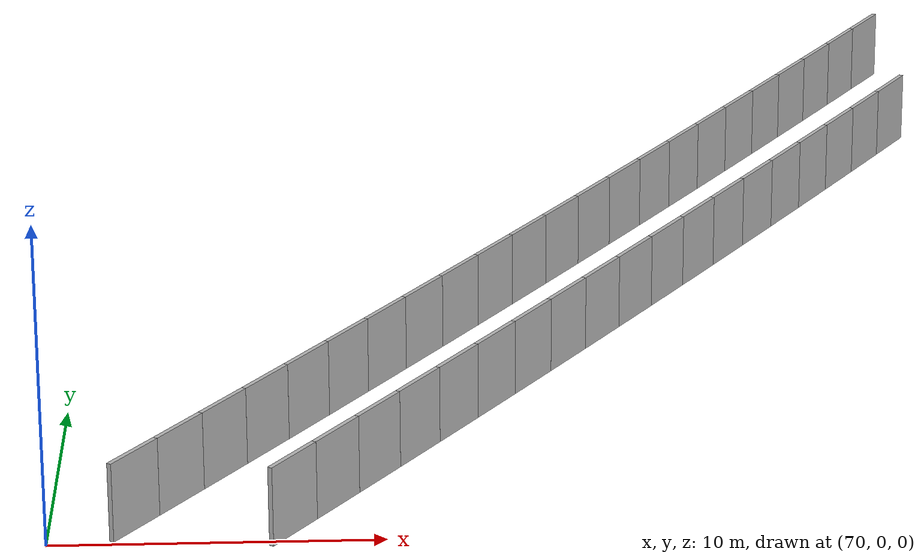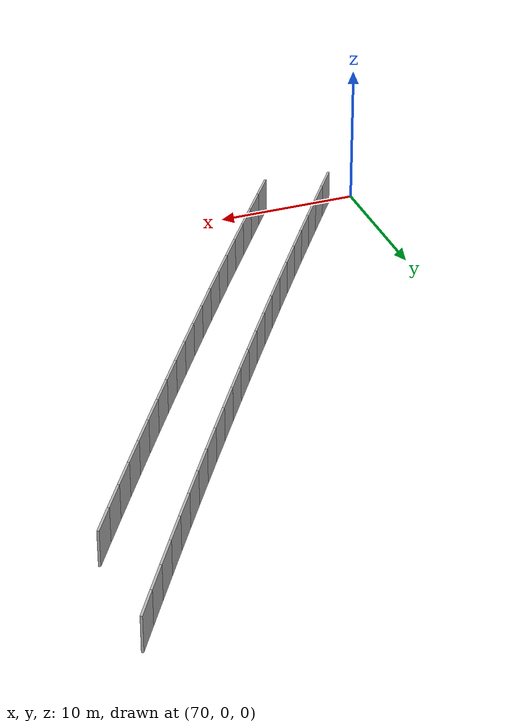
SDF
<?xml version="1.0" ?>
<sdf version="1.6">
  <model name="sps_2107">
    <pose frame="">0 0 0 0 -0 0</pose>
    <static>1</static>
    <self_collide>0</self_collide>
    <allow_auto_disable>0</allow_auto_disable>
    <link name="Wall4335">
      <kinematic>0</kinematic>
      <gravity>1</gravity>
      <self_collide>0</self_collide>
      <collision name="collision">
        <geometry>
          <box>
            <size>2.25463 0.15 2.5</size>
          </box>
        </geometry>
        <pose frame="">0 0 0 0 -0 0</pose>
      </collision>
      <visual name="visual">
        <geometry>
          <box>
            <size>2.25463 0.15 2.5</size>
          </box>
        </geometry>
        <pose frame="">0 0 0 0 -0 0</pose>
        <cast_shadows>1</cast_shadows>
        <transparency>0.0</transparency>
      </visual>
      <pose frame="">77.223 0.656997 1.25 0 -0 0.971576</pose>
    </link>
    <link name="Wall4336">
      <kinematic>0</kinematic>
      <gravity>1</gravity>
      <self_collide>0</self_collide>
      <collision name="collision">
        <geometry>
          <box>
            <size>2.25454 0.15 2.5</size>
          </box>
        </geometry>
        <pose frame="">0 0 0 0 -0 0</pose>
      </collision>
      <visual name="visual">
        <geometry>
          <box>
            <size>2.25454 0.15 2.5</size>
          </box>
        </geometry>
        <pose frame="">0 0 0 0 -0 0</pose>
        <cast_shadows>1</cast_shadows>
        <transparency>0.0</transparency>
      </visual>
      <pose frame="">78.4922 2.5204 1.25 0 -0 0.974136</pose>
    </link>
    <link name="Wall4337">
      <kinematic>0</kinematic>
      <gravity>1</gravity>
      <self_collide>0</self_collide>
      <collision name="collision">
        <geometry>
          <box>
            <size>2.25468 0.15 2.5</size>
          </box>
        </geometry>
        <pose frame="">0 0 0 0 -0 0</pose>
      </collision>
      <visual name="visual">
        <geometry>
          <box>
            <size>2.25468 0.15 2.5</size>
          </box>
        </geometry>
        <pose frame="">0 0 0 0 -0 0</pose>
        <cast_shadows>1</cast_shadows>
        <transparency>0.0</transparency>
      </visual>
      <pose frame="">79.7569 4.38689 1.25 0 -0 0.976404</pose>
    </link>
    <link name="Wall4338">
      <kinematic>0</kinematic>
      <gravity>1</gravity>
      <self_collide>0</self_collide>
      <collision name="collision">
        <geometry>
          <box>
            <size>2.25472 0.15 2.5</size>
          </box>
        </geometry>
        <pose frame="">0 0 0 0 -0 0</pose>
      </collision>
      <visual name="visual">
        <geometry>
          <box>
            <size>2.25472 0.15 2.5</size>
          </box>
        </geometry>
        <pose frame="">0 0 0 0 -0 0</pose>
        <cast_shadows>1</cast_shadows>
        <transparency>0.0</transparency>
      </visual>
      <pose frame="">81.0174 6.25639 1.25 0 -0 0.9788</pose>
    </link>
    <link name="Wall4339">
      <kinematic>0</kinematic>
      <gravity>1</gravity>
      <self_collide>0</self_collide>
      <collision name="collision">
        <geometry>
          <box>
            <size>2.2552 0.15 2.5</size>
          </box>
        </geometry>
        <pose frame="">0 0 0 0 -0 0</pose>
      </collision>
      <visual name="visual">
        <geometry>
          <box>
            <size>2.2552 0.15 2.5</size>
          </box>
        </geometry>
        <pose frame="">0 0 0 0 -0 0</pose>
        <cast_shadows>1</cast_shadows>
        <transparency>0.0</transparency>
      </visual>
      <pose frame="">82.2735 8.1291 1.25 0 -0 0.981157</pose>
    </link>
    <link name="Wall4340">
      <kinematic>0</kinematic>
      <gravity>1</gravity>
      <self_collide>0</self_collide>
      <collision name="collision">
        <geometry>
          <box>
            <size>2.2546 0.15 2.5</size>
          </box>
        </geometry>
        <pose frame="">0 0 0 0 -0 0</pose>
      </collision>
      <visual name="visual">
        <geometry>
          <box>
            <size>2.2546 0.15 2.5</size>
          </box>
        </geometry>
        <pose frame="">0 0 0 0 -0 0</pose>
        <cast_shadows>1</cast_shadows>
        <transparency>0.0</transparency>
      </visual>
      <pose frame="">83.5252 10.0047 1.25 0 -0 0.983454</pose>
    </link>
    <link name="Wall4341">
      <kinematic>0</kinematic>
      <gravity>1</gravity>
      <self_collide>0</self_collide>
      <collision name="collision">
        <geometry>
          <box>
            <size>2.25463 0.15 2.5</size>
          </box>
        </geometry>
        <pose frame="">0 0 0 0 -0 0</pose>
      </collision>
      <visual name="visual">
        <geometry>
          <box>
            <size>2.25463 0.15 2.5</size>
          </box>
        </geometry>
        <pose frame="">0 0 0 0 -0 0</pose>
        <cast_shadows>1</cast_shadows>
        <transparency>0.0</transparency>
      </visual>
      <pose frame="">84.7721 11.8831 1.25 0 -0 0.98603</pose>
    </link>
    <link name="Wall4342">
      <kinematic>0</kinematic>
      <gravity>1</gravity>
      <self_collide>0</self_collide>
      <collision name="collision">
        <geometry>
          <box>
            <size>2.25459 0.15 2.5</size>
          </box>
        </geometry>
        <pose frame="">0 0 0 0 -0 0</pose>
      </collision>
      <visual name="visual">
        <geometry>
          <box>
            <size>2.25459 0.15 2.5</size>
          </box>
        </geometry>
        <pose frame="">0 0 0 0 -0 0</pose>
        <cast_shadows>1</cast_shadows>
        <transparency>0.0</transparency>
      </visual>
      <pose frame="">86.0145 13.7645 1.25 0 -0 0.98832</pose>
    </link>
    <link name="Wall4343">
      <kinematic>0</kinematic>
      <gravity>1</gravity>
      <self_collide>0</self_collide>
      <collision name="collision">
        <geometry>
          <box>
            <size>2.25464 0.15 2.5</size>
          </box>
        </geometry>
        <pose frame="">0 0 0 0 -0 0</pose>
      </collision>
      <visual name="visual">
        <geometry>
          <box>
            <size>2.25464 0.15 2.5</size>
          </box>
        </geometry>
        <pose frame="">0 0 0 0 -0 0</pose>
        <cast_shadows>1</cast_shadows>
        <transparency>0.0</transparency>
      </visual>
      <pose frame="">87.2526 15.6488 1.25 0 -0 0.9907</pose>
    </link>
    <link name="Wall4344">
      <kinematic>0</kinematic>
      <gravity>1</gravity>
      <self_collide>0</self_collide>
      <collision name="collision">
        <geometry>
          <box>
            <size>2.25474 0.15 2.5</size>
          </box>
        </geometry>
        <pose frame="">0 0 0 0 -0 0</pose>
      </collision>
      <visual name="visual">
        <geometry>
          <box>
            <size>2.25474 0.15 2.5</size>
          </box>
        </geometry>
        <pose frame="">0 0 0 0 -0 0</pose>
        <cast_shadows>1</cast_shadows>
        <transparency>0.0</transparency>
      </visual>
      <pose frame="">88.4861 17.5361 1.25 0 -0 0.993057</pose>
    </link>
    <link name="Wall4345">
      <kinematic>0</kinematic>
      <gravity>1</gravity>
      <self_collide>0</self_collide>
      <collision name="collision">
        <geometry>
          <box>
            <size>2.2546 0.15 2.5</size>
          </box>
        </geometry>
        <pose frame="">0 0 0 0 -0 0</pose>
      </collision>
      <visual name="visual">
        <geometry>
          <box>
            <size>2.2546 0.15 2.5</size>
          </box>
        </geometry>
        <pose frame="">0 0 0 0 -0 0</pose>
        <cast_shadows>1</cast_shadows>
        <transparency>0.0</transparency>
      </visual>
      <pose frame="">89.7152 19.4263 1.25 0 -0 0.995438</pose>
    </link>
    <link name="Wall4346">
      <kinematic>0</kinematic>
      <gravity>1</gravity>
      <self_collide>0</self_collide>
      <collision name="collision">
        <geometry>
          <box>
            <size>2.25457 0.15 2.5</size>
          </box>
        </geometry>
        <pose frame="">0 0 0 0 -0 0</pose>
      </collision>
      <visual name="visual">
        <geometry>
          <box>
            <size>2.25457 0.15 2.5</size>
          </box>
        </geometry>
        <pose frame="">0 0 0 0 -0 0</pose>
        <cast_shadows>1</cast_shadows>
        <transparency>0.0</transparency>
      </visual>
      <pose frame="">90.9398 21.3193 1.25 0 -0 0.997751</pose>
    </link>
    <link name="Wall4347">
      <kinematic>0</kinematic>
      <gravity>1</gravity>
      <self_collide>0</self_collide>
      <collision name="collision">
        <geometry>
          <box>
            <size>2.25438 0.15 2.5</size>
          </box>
        </geometry>
        <pose frame="">0 0 0 0 -0 0</pose>
      </collision>
      <visual name="visual">
        <geometry>
          <box>
            <size>2.25438 0.15 2.5</size>
          </box>
        </geometry>
        <pose frame="">0 0 0 0 -0 0</pose>
        <cast_shadows>1</cast_shadows>
        <transparency>0.0</transparency>
      </visual>
      <pose frame="">92.1598 23.2152 1.25 0 -0 1.00034</pose>
    </link>
    <link name="Wall4348">
      <kinematic>0</kinematic>
      <gravity>1</gravity>
      <self_collide>0</self_collide>
      <collision name="collision">
        <geometry>
          <box>
            <size>2.25457 0.15 2.5</size>
          </box>
        </geometry>
        <pose frame="">0 0 0 0 -0 0</pose>
      </collision>
      <visual name="visual">
        <geometry>
          <box>
            <size>2.25457 0.15 2.5</size>
          </box>
        </geometry>
        <pose frame="">0 0 0 0 -0 0</pose>
        <cast_shadows>1</cast_shadows>
        <transparency>0.0</transparency>
      </visual>
      <pose frame="">93.3751 25.114 1.25 0 -0 1.00251</pose>
    </link>
    <link name="Wall4349">
      <kinematic>0</kinematic>
      <gravity>1</gravity>
      <self_collide>0</self_collide>
      <collision name="collision">
        <geometry>
          <box>
            <size>2.25479 0.15 2.5</size>
          </box>
        </geometry>
        <pose frame="">0 0 0 0 -0 0</pose>
      </collision>
      <visual name="visual">
        <geometry>
          <box>
            <size>2.25479 0.15 2.5</size>
          </box>
        </geometry>
        <pose frame="">0 0 0 0 -0 0</pose>
        <cast_shadows>1</cast_shadows>
        <transparency>0.0</transparency>
      </visual>
      <pose frame="">94.5862 27.0158 1.25 0 -0 1.00498</pose>
    </link>
    <link name="Wall4350">
      <kinematic>0</kinematic>
      <gravity>1</gravity>
      <self_collide>0</self_collide>
      <collision name="collision">
        <geometry>
          <box>
            <size>2.25455 0.15 2.5</size>
          </box>
        </geometry>
        <pose frame="">0 0 0 0 -0 0</pose>
      </collision>
      <visual name="visual">
        <geometry>
          <box>
            <size>2.25455 0.15 2.5</size>
          </box>
        </geometry>
        <pose frame="">0 0 0 0 -0 0</pose>
        <cast_shadows>1</cast_shadows>
        <transparency>0.0</transparency>
      </visual>
      <pose frame="">95.7927 28.9205 1.25 0 -0 1.00732</pose>
    </link>
    <link name="Wall4351">
      <kinematic>0</kinematic>
      <gravity>1</gravity>
      <self_collide>0</self_collide>
      <collision name="collision">
        <geometry>
          <box>
            <size>2.25461 0.15 2.5</size>
          </box>
        </geometry>
        <pose frame="">0 0 0 0 -0 0</pose>
      </collision>
      <visual name="visual">
        <geometry>
          <box>
            <size>2.25461 0.15 2.5</size>
          </box>
        </geometry>
        <pose frame="">0 0 0 0 -0 0</pose>
        <cast_shadows>1</cast_shadows>
        <transparency>0.0</transparency>
      </visual>
      <pose frame="">96.9947 30.828 1.25 0 -0 1.00977</pose>
    </link>
    <link name="Wall4352">
      <kinematic>0</kinematic>
      <gravity>1</gravity>
      <self_collide>0</self_collide>
      <collision name="collision">
        <geometry>
          <box>
            <size>2.2545 0.15 2.5</size>
          </box>
        </geometry>
        <pose frame="">0 0 0 0 -0 0</pose>
      </collision>
      <visual name="visual">
        <geometry>
          <box>
            <size>2.2545 0.15 2.5</size>
          </box>
        </geometry>
        <pose frame="">0 0 0 0 -0 0</pose>
        <cast_shadows>1</cast_shadows>
        <transparency>0.0</transparency>
      </visual>
      <pose frame="">98.192 32.7383 1.25 0 -0 1.01204</pose>
    </link>
    <link name="Wall4353">
      <kinematic>0</kinematic>
      <gravity>1</gravity>
      <self_collide>0</self_collide>
      <collision name="collision">
        <geometry>
          <box>
            <size>2.25462 0.15 2.5</size>
          </box>
        </geometry>
        <pose frame="">0 0 0 0 -0 0</pose>
      </collision>
      <visual name="visual">
        <geometry>
          <box>
            <size>2.25462 0.15 2.5</size>
          </box>
        </geometry>
        <pose frame="">0 0 0 0 -0 0</pose>
        <cast_shadows>1</cast_shadows>
        <transparency>0.0</transparency>
      </visual>
      <pose frame="">99.3849 34.6514 1.25 0 -0 1.01446</pose>
    </link>
    <link name="Wall6059">
      <kinematic>0</kinematic>
      <gravity>1</gravity>
      <self_collide>0</self_collide>
      <collision name="collision">
        <geometry>
          <box>
            <size>2.24477 0.15 2.5</size>
          </box>
        </geometry>
        <pose frame="">0 0 0 0 -0 0</pose>
      </collision>
      <visual name="visual">
        <geometry>
          <box>
            <size>2.24477 0.15 2.5</size>
          </box>
        </geometry>
        <pose frame="">0 0 0 0 -0 0</pose>
        <cast_shadows>1</cast_shadows>
        <transparency>0.0</transparency>
      </visual>
      <pose frame="">72.537 1.1393 1.25 0 -0 0.969332</pose>
    </link>
    <link name="Wall6060">
      <kinematic>0</kinematic>
      <gravity>1</gravity>
      <self_collide>0</self_collide>
      <collision name="collision">
        <geometry>
          <box>
            <size>2.24487 0.15 2.5</size>
          </box>
        </geometry>
        <pose frame="">0 0 0 0 -0 0</pose>
      </collision>
      <visual name="visual">
        <geometry>
          <box>
            <size>2.24487 0.15 2.5</size>
          </box>
        </geometry>
        <pose frame="">0 0 0 0 -0 0</pose>
        <cast_shadows>1</cast_shadows>
        <transparency>0.0</transparency>
      </visual>
      <pose frame="">73.805 2.99171 1.25 0 -0 0.971769</pose>
    </link>
    <link name="Wall6061">
      <kinematic>0</kinematic>
      <gravity>1</gravity>
      <self_collide>0</self_collide>
      <collision name="collision">
        <geometry>
          <box>
            <size>2.2447 0.15 2.5</size>
          </box>
        </geometry>
        <pose frame="">0 0 0 0 -0 0</pose>
      </collision>
      <visual name="visual">
        <geometry>
          <box>
            <size>2.2447 0.15 2.5</size>
          </box>
        </geometry>
        <pose frame="">0 0 0 0 -0 0</pose>
        <cast_shadows>1</cast_shadows>
        <transparency>0.0</transparency>
      </visual>
      <pose frame="">75.0685 4.84709 1.25 0 -0 0.974053</pose>
    </link>
    <link name="Wall6062">
      <kinematic>0</kinematic>
      <gravity>1</gravity>
      <self_collide>0</self_collide>
      <collision name="collision">
        <geometry>
          <box>
            <size>2.24471 0.15 2.5</size>
          </box>
        </geometry>
        <pose frame="">0 0 0 0 -0 0</pose>
      </collision>
      <visual name="visual">
        <geometry>
          <box>
            <size>2.24471 0.15 2.5</size>
          </box>
        </geometry>
        <pose frame="">0 0 0 0 -0 0</pose>
        <cast_shadows>1</cast_shadows>
        <transparency>0.0</transparency>
      </visual>
      <pose frame="">76.3278 6.70528 1.25 0 -0 0.976323</pose>
    </link>
    <link name="Wall6063">
      <kinematic>0</kinematic>
      <gravity>1</gravity>
      <self_collide>0</self_collide>
      <collision name="collision">
        <geometry>
          <box>
            <size>2.24479 0.15 2.5</size>
          </box>
        </geometry>
        <pose frame="">0 0 0 0 -0 0</pose>
      </collision>
      <visual name="visual">
        <geometry>
          <box>
            <size>2.24479 0.15 2.5</size>
          </box>
        </geometry>
        <pose frame="">0 0 0 0 -0 0</pose>
        <cast_shadows>1</cast_shadows>
        <transparency>0.0</transparency>
      </visual>
      <pose frame="">77.5828 8.56648 1.25 0 -0 0.978804</pose>
    </link>
    <link name="Wall6064">
      <kinematic>0</kinematic>
      <gravity>1</gravity>
      <self_collide>0</self_collide>
      <collision name="collision">
        <geometry>
          <box>
            <size>2.24499 0.15 2.5</size>
          </box>
        </geometry>
        <pose frame="">0 0 0 0 -0 0</pose>
      </collision>
      <visual name="visual">
        <geometry>
          <box>
            <size>2.24499 0.15 2.5</size>
          </box>
        </geometry>
        <pose frame="">0 0 0 0 -0 0</pose>
        <cast_shadows>1</cast_shadows>
        <transparency>0.0</transparency>
      </visual>
      <pose frame="">78.8332 10.4309 1.25 0 -0 0.981255</pose>
    </link>
    <link name="Wall6065">
      <kinematic>0</kinematic>
      <gravity>1</gravity>
      <self_collide>0</self_collide>
      <collision name="collision">
        <geometry>
          <box>
            <size>2.24474 0.15 2.5</size>
          </box>
        </geometry>
        <pose frame="">0 0 0 0 -0 0</pose>
      </collision>
      <visual name="visual">
        <geometry>
          <box>
            <size>2.24474 0.15 2.5</size>
          </box>
        </geometry>
        <pose frame="">0 0 0 0 -0 0</pose>
        <cast_shadows>1</cast_shadows>
        <transparency>0.0</transparency>
      </visual>
      <pose frame="">80.079 12.2983 1.25 0 -0 0.983631</pose>
    </link>
    <link name="Wall6066">
      <kinematic>0</kinematic>
      <gravity>1</gravity>
      <self_collide>0</self_collide>
      <collision name="collision">
        <geometry>
          <box>
            <size>2.24483 0.15 2.5</size>
          </box>
        </geometry>
        <pose frame="">0 0 0 0 -0 0</pose>
      </collision>
      <visual name="visual">
        <geometry>
          <box>
            <size>2.24483 0.15 2.5</size>
          </box>
        </geometry>
        <pose frame="">0 0 0 0 -0 0</pose>
        <cast_shadows>1</cast_shadows>
        <transparency>0.0</transparency>
      </visual>
      <pose frame="">81.3205 14.1685 1.25 0 -0 0.985878</pose>
    </link>
    <link name="Wall6067">
      <kinematic>0</kinematic>
      <gravity>1</gravity>
      <self_collide>0</self_collide>
      <collision name="collision">
        <geometry>
          <box>
            <size>2.24541 0.15 2.5</size>
          </box>
        </geometry>
        <pose frame="">0 0 0 0 -0 0</pose>
      </collision>
      <visual name="visual">
        <geometry>
          <box>
            <size>2.24541 0.15 2.5</size>
          </box>
        </geometry>
        <pose frame="">0 0 0 0 -0 0</pose>
        <cast_shadows>1</cast_shadows>
        <transparency>0.0</transparency>
      </visual>
      <pose frame="">82.558 16.0418 1.25 0 -0 0.988199</pose>
    </link>
    <link name="Wall6068">
      <kinematic>0</kinematic>
      <gravity>1</gravity>
      <self_collide>0</self_collide>
      <collision name="collision">
        <geometry>
          <box>
            <size>2.24477 0.15 2.5</size>
          </box>
        </geometry>
        <pose frame="">0 0 0 0 -0 0</pose>
      </collision>
      <visual name="visual">
        <geometry>
          <box>
            <size>2.24477 0.15 2.5</size>
          </box>
        </geometry>
        <pose frame="">0 0 0 0 -0 0</pose>
        <cast_shadows>1</cast_shadows>
        <transparency>0.0</transparency>
      </visual>
      <pose frame="">83.7909 17.9181 1.25 0 -0 0.990712</pose>
    </link>
    <link name="Wall6069">
      <kinematic>0</kinematic>
      <gravity>1</gravity>
      <self_collide>0</self_collide>
      <collision name="collision">
        <geometry>
          <box>
            <size>2.2447 0.15 2.5</size>
          </box>
        </geometry>
        <pose frame="">0 0 0 0 -0 0</pose>
      </collision>
      <visual name="visual">
        <geometry>
          <box>
            <size>2.2447 0.15 2.5</size>
          </box>
        </geometry>
        <pose frame="">0 0 0 0 -0 0</pose>
        <cast_shadows>1</cast_shadows>
        <transparency>0.0</transparency>
      </visual>
      <pose frame="">85.0189 19.7971 1.25 0 -0 0.993095</pose>
    </link>
    <link name="Wall6070">
      <kinematic>0</kinematic>
      <gravity>1</gravity>
      <self_collide>0</self_collide>
      <collision name="collision">
        <geometry>
          <box>
            <size>2.24473 0.15 2.5</size>
          </box>
        </geometry>
        <pose frame="">0 0 0 0 -0 0</pose>
      </collision>
      <visual name="visual">
        <geometry>
          <box>
            <size>2.24473 0.15 2.5</size>
          </box>
        </geometry>
        <pose frame="">0 0 0 0 -0 0</pose>
        <cast_shadows>1</cast_shadows>
        <transparency>0.0</transparency>
      </visual>
      <pose frame="">86.2425 21.679 1.25 0 -0 0.995471</pose>
    </link>
    <link name="Wall6071">
      <kinematic>0</kinematic>
      <gravity>1</gravity>
      <self_collide>0</self_collide>
      <collision name="collision">
        <geometry>
          <box>
            <size>2.24445 0.15 2.5</size>
          </box>
        </geometry>
        <pose frame="">0 0 0 0 -0 0</pose>
      </collision>
      <visual name="visual">
        <geometry>
          <box>
            <size>2.24445 0.15 2.5</size>
          </box>
        </geometry>
        <pose frame="">0 0 0 0 -0 0</pose>
        <cast_shadows>1</cast_shadows>
        <transparency>0.0</transparency>
      </visual>
      <pose frame="">87.4616 23.5637 1.25 0 -0 0.997818</pose>
    </link>
    <link name="Wall6072">
      <kinematic>0</kinematic>
      <gravity>1</gravity>
      <self_collide>0</self_collide>
      <collision name="collision">
        <geometry>
          <box>
            <size>2.24507 0.15 2.5</size>
          </box>
        </geometry>
        <pose frame="">0 0 0 0 -0 0</pose>
      </collision>
      <visual name="visual">
        <geometry>
          <box>
            <size>2.24507 0.15 2.5</size>
          </box>
        </geometry>
        <pose frame="">0 0 0 0 -0 0</pose>
        <cast_shadows>1</cast_shadows>
        <transparency>0.0</transparency>
      </visual>
      <pose frame="">88.6764 25.4514 1.25 0 -0 1.0002</pose>
    </link>
    <link name="Wall6073">
      <kinematic>0</kinematic>
      <gravity>1</gravity>
      <self_collide>0</self_collide>
      <collision name="collision">
        <geometry>
          <box>
            <size>2.24465 0.15 2.5</size>
          </box>
        </geometry>
        <pose frame="">0 0 0 0 -0 0</pose>
      </collision>
      <visual name="visual">
        <geometry>
          <box>
            <size>2.24465 0.15 2.5</size>
          </box>
        </geometry>
        <pose frame="">0 0 0 0 -0 0</pose>
        <cast_shadows>1</cast_shadows>
        <transparency>0.0</transparency>
      </visual>
      <pose frame="">89.8866 27.3421 1.25 0 -0 1.00266</pose>
    </link>
    <link name="Wall6074">
      <kinematic>0</kinematic>
      <gravity>1</gravity>
      <self_collide>0</self_collide>
      <collision name="collision">
        <geometry>
          <box>
            <size>2.24474 0.15 2.5</size>
          </box>
        </geometry>
        <pose frame="">0 0 0 0 -0 0</pose>
      </collision>
      <visual name="visual">
        <geometry>
          <box>
            <size>2.24474 0.15 2.5</size>
          </box>
        </geometry>
        <pose frame="">0 0 0 0 -0 0</pose>
        <cast_shadows>1</cast_shadows>
        <transparency>0.0</transparency>
      </visual>
      <pose frame="">91.0922 29.2355 1.25 0 -0 1.00488</pose>
    </link>
    <link name="Wall6075">
      <kinematic>0</kinematic>
      <gravity>1</gravity>
      <self_collide>0</self_collide>
      <collision name="collision">
        <geometry>
          <box>
            <size>2.24468 0.15 2.5</size>
          </box>
        </geometry>
        <pose frame="">0 0 0 0 -0 0</pose>
      </collision>
      <visual name="visual">
        <geometry>
          <box>
            <size>2.24468 0.15 2.5</size>
          </box>
        </geometry>
        <pose frame="">0 0 0 0 -0 0</pose>
        <cast_shadows>1</cast_shadows>
        <transparency>0.0</transparency>
      </visual>
      <pose frame="">92.2935 31.1317 1.25 0 -0 1.00731</pose>
    </link>
    <link name="Wall6076">
      <kinematic>0</kinematic>
      <gravity>1</gravity>
      <self_collide>0</self_collide>
      <collision name="collision">
        <geometry>
          <box>
            <size>2.24491 0.15 2.5</size>
          </box>
        </geometry>
        <pose frame="">0 0 0 0 -0 0</pose>
      </collision>
      <visual name="visual">
        <geometry>
          <box>
            <size>2.24491 0.15 2.5</size>
          </box>
        </geometry>
        <pose frame="">0 0 0 0 -0 0</pose>
        <cast_shadows>1</cast_shadows>
        <transparency>0.0</transparency>
      </visual>
      <pose frame="">93.4903 33.0309 1.25 0 -0 1.00975</pose>
    </link>
    <link name="Wall6077">
      <kinematic>0</kinematic>
      <gravity>1</gravity>
      <self_collide>0</self_collide>
      <collision name="collision">
        <geometry>
          <box>
            <size>2.24478 0.15 2.5</size>
          </box>
        </geometry>
        <pose frame="">0 0 0 0 -0 0</pose>
      </collision>
      <visual name="visual">
        <geometry>
          <box>
            <size>2.24478 0.15 2.5</size>
          </box>
        </geometry>
        <pose frame="">0 0 0 0 -0 0</pose>
        <cast_shadows>1</cast_shadows>
        <transparency>0.0</transparency>
      </visual>
      <pose frame="">94.6825 34.933 1.25 0 -0 1.01209</pose>
    </link>
    <link name="Wall6078">
      <kinematic>0</kinematic>
      <gravity>1</gravity>
      <self_collide>0</self_collide>
      <collision name="collision">
        <geometry>
          <box>
            <size>2.24488 0.15 2.5</size>
          </box>
        </geometry>
        <pose frame="">0 0 0 0 -0 0</pose>
      </collision>
      <visual name="visual">
        <geometry>
          <box>
            <size>2.24488 0.15 2.5</size>
          </box>
        </geometry>
        <pose frame="">0 0 0 0 -0 0</pose>
        <cast_shadows>1</cast_shadows>
        <transparency>0.0</transparency>
      </visual>
      <pose frame="">95.8701 36.8379 1.25 0 -0 1.01449</pose>
    </link>
    <link name="Wall6079">
      <kinematic>0</kinematic>
      <gravity>1</gravity>
      <self_collide>0</self_collide>
      <collision name="collision">
        <geometry>
          <box>
            <size>2.24467 0.15 2.5</size>
          </box>
        </geometry>
        <pose frame="">0 0 0 0 -0 0</pose>
      </collision>
      <visual name="visual">
        <geometry>
          <box>
            <size>2.24467 0.15 2.5</size>
          </box>
        </geometry>
        <pose frame="">0 0 0 0 -0 0</pose>
        <cast_shadows>1</cast_shadows>
        <transparency>0.0</transparency>
      </visual>
      <pose frame="">97.0532 38.7456 1.25 0 -0 1.01686</pose>
    </link>
    <link name="Wall6080">
      <kinematic>0</kinematic>
      <gravity>1</gravity>
      <self_collide>0</self_collide>
      <collision name="collision">
        <geometry>
          <box>
            <size>2.24475 0.15 2.5</size>
          </box>
        </geometry>
        <pose frame="">0 0 0 0 -0 0</pose>
      </collision>
      <visual name="visual">
        <geometry>
          <box>
            <size>2.24475 0.15 2.5</size>
          </box>
        </geometry>
        <pose frame="">0 0 0 0 -0 0</pose>
        <cast_shadows>1</cast_shadows>
        <transparency>0.0</transparency>
      </visual>
      <pose frame="">98.2318 40.656 1.25 0 -0 1.01918</pose>
    </link>
    <link name="Wall6081">
      <kinematic>0</kinematic>
      <gravity>1</gravity>
      <self_collide>0</self_collide>
      <collision name="collision">
        <geometry>
          <box>
            <size>2.2449 0.15 2.5</size>
          </box>
        </geometry>
        <pose frame="">0 0 0 0 -0 0</pose>
      </collision>
      <visual name="visual">
        <geometry>
          <box>
            <size>2.2449 0.15 2.5</size>
          </box>
        </geometry>
        <pose frame="">0 0 0 0 -0 0</pose>
        <cast_shadows>1</cast_shadows>
        <transparency>0.0</transparency>
      </visual>
      <pose frame="">99.4059 42.5693 1.25 0 -0 1.02162</pose>
    </link>
  </model>
</sdf>
